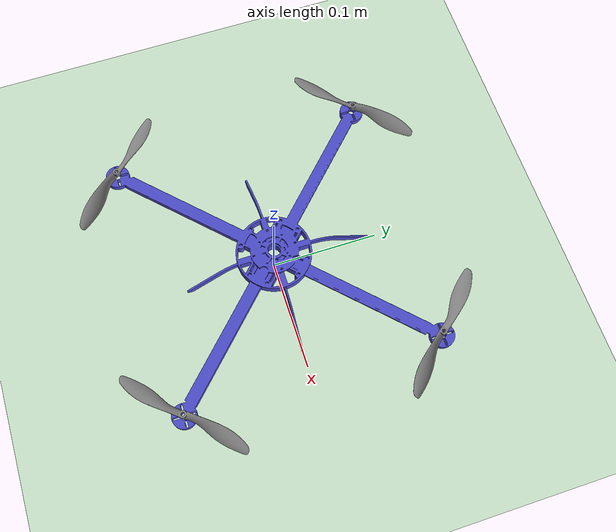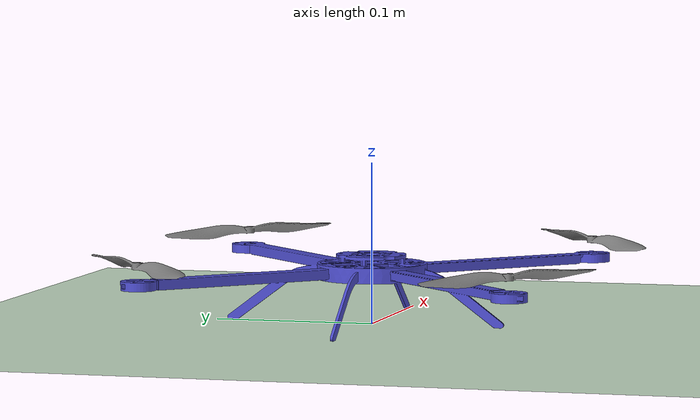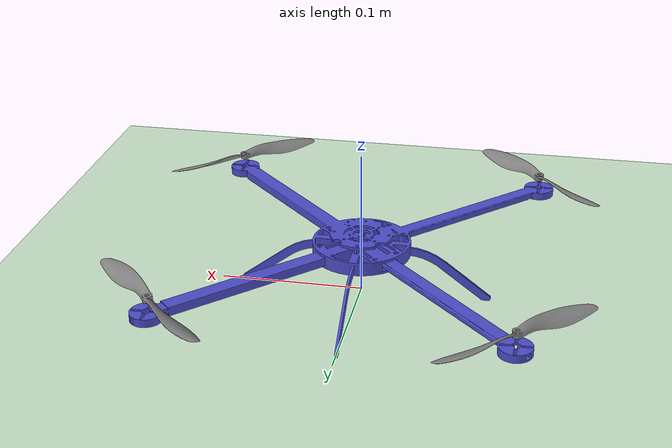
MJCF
<mujoco model="quadrotor0">
	<compiler inertiafromgeom="true" coordinate="local"/>
	<option	timestep="0.001" gravity="0 0 -9.81" wind="0. 0. 0." density="1.225" viscosity="1.86e-5" />
  <asset>
		<mesh file="body.stl" scale="0.0006 0.0006 0.0006"/>
		<mesh file="prop_cw.stl" scale="0.0006 0.0006 0.0006"/>
		<mesh file="prop_ccw.stl" scale="0.0006 0.0006 0.0006"/>
    <texture builtin="gradient" height="100" rgb1="1 1 1" rgb2="0 0 0" type="skybox" width="100"/>
    <texture builtin="flat" height="1278" mark="cross" markrgb="1 1 1" name="texgeom" random="0.01" rgb1="0.8 0.6 0.4" rgb2="0.8 0.6 0.4" type="cube" width="127"/>
    <texture builtin="checker" height="100" name="texplane" rgb1="0 0 0" rgb2="0.8 0.8 0.8" type="2d" width="100"/>
    <material name="MatPlane" reflectance="0.5" shininess="1" specular="1" texrepeat="60 60" texture="texplane"/>
    <material name="geom" texture="texgeom" texuniform="true"/>
  </asset>
	<worldbody>
    <light cutoff="100" diffuse="1 1 1" dir="-0 0 -1.3" directional="true" exponent="1" pos="0 0 1.3" specular=".1 .1 .1"/>
    <geom conaffinity="1" condim="3" material="MatPlane" name="floor" pos="0 0 0" rgba="0.8 0.9 0.8 1" size="40 40 40" type="plane"/>

		<body name="quadrotor" pos="0 0 0" quat="1. 0. 0. 0.">
			<geom name="core" type="mesh" mesh="body"  rgba="0.3 0.3 0.8 1" mass="0.5"/>

			<joint name="root"   type="free" damping="0" armature="0" pos="0 0 0"/>

			<body name="leaf0" pos="0.114 0.114 0.038" >
				<joint name="leaf0-joint" type="hinge" axis="0 0 1" pos="0 0 0" armature="0"/>
				<geom name="leaf0-geo" type="mesh" mesh="prop_cw" quat="1.0 0.0 0.0 0." mass=".0025"/>
			</body>
			<body name="leaf1" pos="0.114 -0.114  0.038" >
				<joint name="leaf1-joint" type="hinge" axis="0 0 1" pos="0 0 0" armature="0"/>
				<geom name="leaf1-geo" type="mesh" mesh="prop_ccw" quat="1.0 0.0 0.0 0." mass=".0025"/>
			</body>

			<body name="leaf2" pos="-0.114 -0.114  0.038" >
				<joint name="leaf2-joint" type="hinge" axis="0 0 1" pos="0 0 0" armature="0"/>
				<geom name="leaf2-geo" type="mesh" mesh="prop_cw" quat="1.0 0.0 0.0 0." mass=".0025"/>
			</body>

			<body name="leaf3" pos="-0.114 0.114  0.038" >
				<joint name="leaf3-joint" type="hinge" axis="0 0 1" pos="0 0 0" armature="0"/>
				<geom name="leaf3-geo" type="mesh" mesh="prop_ccw" quat="1.0 0.0 0.0 0." mass=".0025"/>
			</body>
			<!-- Motor sites to attach motor actuators --->
        <site name="motor0" type="cylinder" pos=" 0.114  0.114 0.04"  size="0.05 0.0025"  quat="1.0 0.0 0.0 0." rgba="0.3 0.8 0.3 0"/>
        <site name="motor1" type="cylinder" pos=" 0.114 -0.114 0.04"  size="0.05 0.0025"  quat="1.0 0.0 0.0 0." rgba="0.3 0.8 0.3 0"/>
        <site name="motor2" type="cylinder" pos="-0.114 -0.114 0.04"  size="0.05 0.0025"  quat="1.0 0.0 0.0 0." rgba="0.3 0.8 0.3 0"/>
        <site name="motor3" type="cylinder" pos="-0.114  0.114 0.04"  size="0.05 0.0025"  quat="1.0 0.0 0.0 0." rgba="0.3 0.8 0.3 0"/>

			<!-- Thruster geometries for collisions since site's are excluded from collision checking --->

		</body>

	</worldbody>
    <actuator>
			<motor ctrllimited="true" ctrlrange="0.0 1.0" gear="-0.1" joint="leaf0-joint"/>
			<motor ctrllimited="true" ctrlrange="0.0 1.0" gear="0.1" joint="leaf1-joint"/>
			<motor ctrllimited="true" ctrlrange="0.0 1.0" gear="-0.1" joint="leaf2-joint"/>
			<motor ctrllimited="true" ctrlrange="0.0 1.0" gear="0.1" joint="leaf3-joint"/>
			<motor ctrllimited="true" ctrlrange="0.0 5.0" gear=".0  0. 1 0. 0. 0." site="motor0"/>
      <motor ctrllimited="true" ctrlrange="0.0 5.0" gear=".0  0. 1 0. 0. 0." site="motor1"/>
      <motor ctrllimited="true" ctrlrange="0.0 5.0" gear=".0  0. 1 0. 0. 0." site="motor2"/>
      <motor ctrllimited="true" ctrlrange="0.0 5.0" gear=".0  0. 1 0. 0. 0." site="motor3"/>
	</actuator>
</mujoco>
